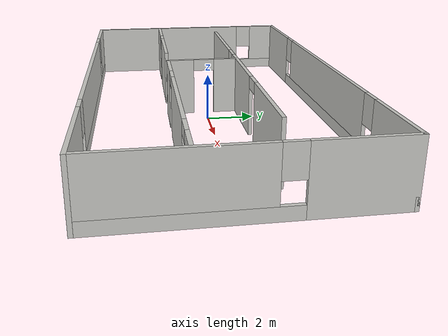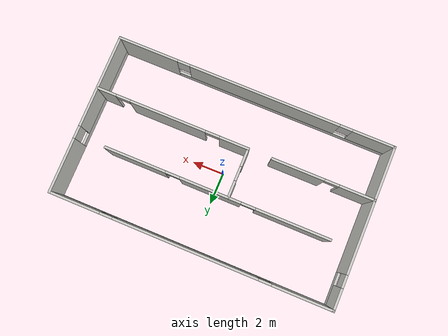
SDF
<?xml version='1.0'?>
<sdf version='1.7'>
  <model name='detectWall'>
    <pose>-0.025713 0.027615 0 0 -0 0</pose>
    <link name='Wall_0'>
      <pose>0 5.05 0 0 -0 0</pose>
      <visual name='Wall_0_Visual_0'>
        <pose>-6.96078 0 1.25 0 -0 0</pose>
        <geometry>
          <box>
            <size>3.82844 0.15 2.5</size>
          </box>
        </geometry>
        <material>
          <script>
            <uri>file://media/materials/scripts/gazebo.material</uri>
            <name>Gazebo/CeilingTiled</name>
          </script>
          <ambient>1 1 1 1</ambient>
        </material>
        <meta>
          <layer>0</layer>
        </meta>
      </visual>
      <collision name='Wall_0_Collision_0'>
        <geometry>
          <box>
            <size>3.82844 0.15 2.5</size>
          </box>
        </geometry>
        <pose>-6.96078 0 1.25 0 -0 0</pose>
      </collision>
      <visual name='Wall_0_Visual_1'>
        <pose>1.91422 0 0.25 0 -0 0</pose>
        <geometry>
          <box>
            <size>13.9216 0.15 0.5</size>
          </box>
        </geometry>
        <material>
          <script>
            <uri>file://media/materials/scripts/gazebo.material</uri>
            <name>Gazebo/CeilingTiled</name>
          </script>
          <ambient>1 1 1 1</ambient>
        </material>
        <meta>
          <layer>0</layer>
        </meta>
      </visual>
      <collision name='Wall_0_Collision_1'>
        <geometry>
          <box>
            <size>13.9216 0.15 0.5</size>
          </box>
        </geometry>
        <pose>1.91422 0 0.25 0 -0 0</pose>
      </collision>
      <visual name='Wall_0_Visual_2'>
        <pose>0.288681 0 1.5 0 -0 0</pose>
        <geometry>
          <box>
            <size>9.07048 0.15 2</size>
          </box>
        </geometry>
        <material>
          <script>
            <uri>file://media/materials/scripts/gazebo.material</uri>
            <name>Gazebo/CeilingTiled</name>
          </script>
          <ambient>1 1 1 1</ambient>
        </material>
        <meta>
          <layer>0</layer>
        </meta>
      </visual>
      <collision name='Wall_0_Collision_2'>
        <geometry>
          <box>
            <size>9.07048 0.15 2</size>
          </box>
        </geometry>
        <pose>0.288681 0 1.5 0 -0 0</pose>
      </collision>
      <visual name='Wall_0_Visual_3'>
        <pose>7.24946 0 1.5 0 -0 0</pose>
        <geometry>
          <box>
            <size>3.25108 0.15 2</size>
          </box>
        </geometry>
        <material>
          <script>
            <uri>file://media/materials/scripts/gazebo.material</uri>
            <name>Gazebo/CeilingTiled</name>
          </script>
          <ambient>1 1 1 1</ambient>
        </material>
        <meta>
          <layer>0</layer>
        </meta>
      </visual>
      <collision name='Wall_0_Collision_3'>
        <geometry>
          <box>
            <size>3.25108 0.15 2</size>
          </box>
        </geometry>
        <pose>7.24946 0 1.5 0 -0 0</pose>
      </collision>
      <visual name='Wall_0_Visual_4'>
        <pose>-4.64656 0 1.9 0 -0 0</pose>
        <geometry>
          <box>
            <size>0.8 0.15 1.2</size>
          </box>
        </geometry>
        <material>
          <script>
            <uri>file://media/materials/scripts/gazebo.material</uri>
            <name>Gazebo/CeilingTiled</name>
          </script>
          <ambient>1 1 1 1</ambient>
        </material>
        <meta>
          <layer>0</layer>
        </meta>
      </visual>
      <collision name='Wall_0_Collision_4'>
        <geometry>
          <box>
            <size>0.8 0.15 1.2</size>
          </box>
        </geometry>
        <pose>-4.64656 0 1.9 0 -0 0</pose>
      </collision>
      <visual name='Wall_0_Visual_5'>
        <pose>5.22392 0 1.9 0 -0 0</pose>
        <geometry>
          <box>
            <size>0.8 0.15 1.2</size>
          </box>
        </geometry>
        <material>
          <script>
            <uri>file://media/materials/scripts/gazebo.material</uri>
            <name>Gazebo/CeilingTiled</name>
          </script>
          <ambient>1 1 1 1</ambient>
        </material>
        <meta>
          <layer>0</layer>
        </meta>
      </visual>
      <collision name='Wall_0_Collision_5'>
        <geometry>
          <box>
            <size>0.8 0.15 1.2</size>
          </box>
        </geometry>
        <pose>5.22392 0 1.9 0 -0 0</pose>
      </collision>
    </link>
    <link name='Wall_1'>
      <pose>8.8 -0 0 0 -0 -1.5708</pose>
      <visual name='Wall_1_Visual_0'>
        <pose>-3.3782 0 1.25 0 -0 0</pose>
        <geometry>
          <box>
            <size>3.49359 0.15 2.5</size>
          </box>
        </geometry>
        <material>
          <script>
            <uri>file://media/materials/scripts/gazebo.material</uri>
            <name>Gazebo/CeilingTiled</name>
          </script>
          <ambient>1 1 1 1</ambient>
        </material>
        <meta>
          <layer>0</layer>
        </meta>
      </visual>
      <collision name='Wall_1_Collision_0'>
        <geometry>
          <box>
            <size>3.49359 0.15 2.5</size>
          </box>
        </geometry>
        <pose>-3.3782 0 1.25 0 -0 0</pose>
      </collision>
      <visual name='Wall_1_Visual_1'>
        <pose>1.7468 0 0.25 0 -0 0</pose>
        <geometry>
          <box>
            <size>6.75641 0.15 0.5</size>
          </box>
        </geometry>
        <material>
          <script>
            <uri>file://media/materials/scripts/gazebo.material</uri>
            <name>Gazebo/CeilingTiled</name>
          </script>
          <ambient>1 1 1 1</ambient>
        </material>
        <meta>
          <layer>0</layer>
        </meta>
      </visual>
      <collision name='Wall_1_Collision_1'>
        <geometry>
          <box>
            <size>6.75641 0.15 0.5</size>
          </box>
        </geometry>
        <pose>1.7468 0 0.25 0 -0 0</pose>
      </collision>
      <visual name='Wall_1_Visual_2'>
        <pose>2.1468 0 1.5 0 -0 0</pose>
        <geometry>
          <box>
            <size>5.95641 0.15 2</size>
          </box>
        </geometry>
        <material>
          <script>
            <uri>file://media/materials/scripts/gazebo.material</uri>
            <name>Gazebo/CeilingTiled</name>
          </script>
          <ambient>1 1 1 1</ambient>
        </material>
        <meta>
          <layer>0</layer>
        </meta>
      </visual>
      <collision name='Wall_1_Collision_2'>
        <geometry>
          <box>
            <size>5.95641 0.15 2</size>
          </box>
        </geometry>
        <pose>2.1468 0 1.5 0 -0 0</pose>
      </collision>
      <visual name='Wall_1_Visual_3'>
        <pose>-1.23141 0 1.9 0 -0 0</pose>
        <geometry>
          <box>
            <size>0.8 0.15 1.2</size>
          </box>
        </geometry>
        <material>
          <script>
            <uri>file://media/materials/scripts/gazebo.material</uri>
            <name>Gazebo/CeilingTiled</name>
          </script>
          <ambient>1 1 1 1</ambient>
        </material>
        <meta>
          <layer>0</layer>
        </meta>
      </visual>
      <collision name='Wall_1_Collision_3'>
        <geometry>
          <box>
            <size>0.8 0.15 1.2</size>
          </box>
        </geometry>
        <pose>-1.23141 0 1.9 0 -0 0</pose>
      </collision>
    </link>
    <link name='Wall_10'>
      <pose>-5.60751 -1.68367 0 0 -0 0</pose>
      <visual name='Wall_10_Visual_0'>
        <pose>-2.12298 0 1.25 0 -0 0</pose>
        <geometry>
          <box>
            <size>2.25404 0.15 2.5</size>
          </box>
        </geometry>
        <material>
          <script>
            <uri>file://media/materials/scripts/gazebo.material</uri>
            <name>Gazebo/CeilingTiled</name>
          </script>
          <ambient>1 1 1 1</ambient>
        </material>
        <meta>
          <layer>0</layer>
        </meta>
      </visual>
      <collision name='Wall_10_Collision_0'>
        <geometry>
          <box>
            <size>2.25404 0.15 2.5</size>
          </box>
        </geometry>
        <pose>-2.12298 0 1.25 0 -0 0</pose>
      </collision>
      <visual name='Wall_10_Visual_1'>
        <pose>1.57702 0 1.25 0 -0 0</pose>
        <geometry>
          <box>
            <size>3.34596 0.15 2.5</size>
          </box>
        </geometry>
        <material>
          <script>
            <uri>file://media/materials/scripts/gazebo.material</uri>
            <name>Gazebo/CeilingTiled</name>
          </script>
          <ambient>1 1 1 1</ambient>
        </material>
        <meta>
          <layer>0</layer>
        </meta>
      </visual>
      <collision name='Wall_10_Collision_1'>
        <geometry>
          <box>
            <size>3.34596 0.15 2.5</size>
          </box>
        </geometry>
        <pose>1.57702 0 1.25 0 -0 0</pose>
      </collision>
      <visual name='Wall_10_Visual_2'>
        <pose>-0.545956 0 2.25 0 -0 0</pose>
        <geometry>
          <box>
            <size>0.9 0.15 0.5</size>
          </box>
        </geometry>
        <material>
          <script>
            <uri>file://media/materials/scripts/gazebo.material</uri>
            <name>Gazebo/CeilingTiled</name>
          </script>
          <ambient>1 1 1 1</ambient>
        </material>
        <meta>
          <layer>0</layer>
        </meta>
      </visual>
      <collision name='Wall_10_Collision_2'>
        <geometry>
          <box>
            <size>0.9 0.15 0.5</size>
          </box>
        </geometry>
        <pose>-0.545956 0 2.25 0 -0 0</pose>
      </collision>
    </link>
    <link name='Wall_12'>
      <pose>-0.894491 -0.143127 0 0 -0 -1.5708</pose>
      <visual name='Wall_12_Visual_0'>
        <pose>-1.0568 0 1.25 0 -0 0</pose>
        <geometry>
          <box>
            <size>1.1364 0.15 2.5</size>
          </box>
        </geometry>
        <material>
          <script>
            <uri>file://media/materials/scripts/gazebo.material</uri>
            <name>Gazebo/CeilingTiled</name>
          </script>
          <ambient>1 1 1 1</ambient>
        </material>
        <meta>
          <layer>0</layer>
        </meta>
      </visual>
      <collision name='Wall_12_Collision_0'>
        <geometry>
          <box>
            <size>1.1364 0.15 2.5</size>
          </box>
        </geometry>
        <pose>-1.0568 0 1.25 0 -0 0</pose>
      </collision>
      <visual name='Wall_12_Visual_1'>
        <pose>1.0182 0 1.25 0 -0 0</pose>
        <geometry>
          <box>
            <size>1.21361 0.15 2.5</size>
          </box>
        </geometry>
        <material>
          <script>
            <uri>file://media/materials/scripts/gazebo.material</uri>
            <name>Gazebo/CeilingTiled</name>
          </script>
          <ambient>1 1 1 1</ambient>
        </material>
        <meta>
          <layer>0</layer>
        </meta>
      </visual>
      <collision name='Wall_12_Collision_1'>
        <geometry>
          <box>
            <size>1.21361 0.15 2.5</size>
          </box>
        </geometry>
        <pose>1.0182 0 1.25 0 -0 0</pose>
      </collision>
      <visual name='Wall_12_Visual_2'>
        <pose>-0.038605 0 2.25 0 -0 0</pose>
        <geometry>
          <box>
            <size>0.9 0.15 0.5</size>
          </box>
        </geometry>
        <material>
          <script>
            <uri>file://media/materials/scripts/gazebo.material</uri>
            <name>Gazebo/CeilingTiled</name>
          </script>
          <ambient>1 1 1 1</ambient>
        </material>
        <meta>
          <layer>0</layer>
        </meta>
      </visual>
      <collision name='Wall_12_Collision_2'>
        <geometry>
          <box>
            <size>0.9 0.15 0.5</size>
          </box>
        </geometry>
        <pose>-0.038605 0 2.25 0 -0 0</pose>
      </collision>
    </link>
    <link name='Wall_16'>
      <pose>3.90551 -1.69313 0 0 -0 0</pose>
      <visual name='Wall_16_Visual_0'>
        <pose>-3.92574 0 1.25 0 -0 0</pose>
        <geometry>
          <box>
            <size>1.89852 0.15 2.5</size>
          </box>
        </geometry>
        <material>
          <script>
            <uri>file://media/materials/scripts/gazebo.material</uri>
            <name>Gazebo/CeilingTiled</name>
          </script>
          <ambient>1 1 1 1</ambient>
        </material>
        <meta>
          <layer>0</layer>
        </meta>
      </visual>
      <collision name='Wall_16_Collision_0'>
        <geometry>
          <box>
            <size>1.89852 0.15 2.5</size>
          </box>
        </geometry>
        <pose>-3.92574 0 1.25 0 -0 0</pose>
      </collision>
      <visual name='Wall_16_Visual_1'>
        <pose>0.342771 0 1.25 0 -0 0</pose>
        <geometry>
          <box>
            <size>4.8385 0.15 2.5</size>
          </box>
        </geometry>
        <material>
          <script>
            <uri>file://media/materials/scripts/gazebo.material</uri>
            <name>Gazebo/CeilingTiled</name>
          </script>
          <ambient>1 1 1 1</ambient>
        </material>
        <meta>
          <layer>0</layer>
        </meta>
      </visual>
      <collision name='Wall_16_Collision_1'>
        <geometry>
          <box>
            <size>4.8385 0.15 2.5</size>
          </box>
        </geometry>
        <pose>0.342771 0 1.25 0 -0 0</pose>
      </collision>
      <visual name='Wall_16_Visual_2'>
        <pose>4.26851 0 1.25 0 -0 0</pose>
        <geometry>
          <box>
            <size>1.21298 0.15 2.5</size>
          </box>
        </geometry>
        <material>
          <script>
            <uri>file://media/materials/scripts/gazebo.material</uri>
            <name>Gazebo/CeilingTiled</name>
          </script>
          <ambient>1 1 1 1</ambient>
        </material>
        <meta>
          <layer>0</layer>
        </meta>
      </visual>
      <collision name='Wall_16_Collision_2'>
        <geometry>
          <box>
            <size>1.21298 0.15 2.5</size>
          </box>
        </geometry>
        <pose>4.26851 0 1.25 0 -0 0</pose>
      </collision>
      <visual name='Wall_16_Visual_3'>
        <pose>-2.52648 0 2.25 0 -0 0</pose>
        <geometry>
          <box>
            <size>0.9 0.15 0.5</size>
          </box>
        </geometry>
        <material>
          <script>
            <uri>file://media/materials/scripts/gazebo.material</uri>
            <name>Gazebo/CeilingTiled</name>
          </script>
          <ambient>1 1 1 1</ambient>
        </material>
        <meta>
          <layer>0</layer>
        </meta>
      </visual>
      <collision name='Wall_16_Collision_3'>
        <geometry>
          <box>
            <size>0.9 0.15 0.5</size>
          </box>
        </geometry>
        <pose>-2.52648 0 2.25 0 -0 0</pose>
      </collision>
      <visual name='Wall_16_Visual_4'>
        <pose>3.21202 0 2.25 0 -0 0</pose>
        <geometry>
          <box>
            <size>0.9 0.15 0.5</size>
          </box>
        </geometry>
        <material>
          <script>
            <uri>file://media/materials/scripts/gazebo.material</uri>
            <name>Gazebo/CeilingTiled</name>
          </script>
          <ambient>1 1 1 1</ambient>
        </material>
        <meta>
          <layer>0</layer>
        </meta>
      </visual>
      <collision name='Wall_16_Collision_4'>
        <geometry>
          <box>
            <size>0.9 0.15 0.5</size>
          </box>
        </geometry>
        <pose>3.21202 0 2.25 0 -0 0</pose>
      </collision>
    </link>
    <link name='Wall_2'>
      <pose>0 -5.05 0 0 -0 3.14159</pose>
      <visual name='Wall_2_Visual_0'>
        <pose>-6.95289 0 1.25 0 -0 0</pose>
        <geometry>
          <box>
            <size>3.84422 0.15 2.5</size>
          </box>
        </geometry>
        <material>
          <script>
            <uri>file://media/materials/scripts/gazebo.material</uri>
            <name>Gazebo/CeilingTiled</name>
          </script>
          <ambient>1 1 1 1</ambient>
        </material>
        <meta>
          <layer>0</layer>
        </meta>
      </visual>
      <collision name='Wall_2_Collision_0'>
        <geometry>
          <box>
            <size>3.84422 0.15 2.5</size>
          </box>
        </geometry>
        <pose>-6.95289 0 1.25 0 -0 0</pose>
      </collision>
      <visual name='Wall_2_Visual_1'>
        <pose>1.92211 0 0.25 0 -0 0</pose>
        <geometry>
          <box>
            <size>13.9058 0.15 0.5</size>
          </box>
        </geometry>
        <material>
          <script>
            <uri>file://media/materials/scripts/gazebo.material</uri>
            <name>Gazebo/CeilingTiled</name>
          </script>
          <ambient>1 1 1 1</ambient>
        </material>
        <meta>
          <layer>0</layer>
        </meta>
      </visual>
      <collision name='Wall_2_Collision_1'>
        <geometry>
          <box>
            <size>13.9058 0.15 0.5</size>
          </box>
        </geometry>
        <pose>1.92211 0 0.25 0 -0 0</pose>
      </collision>
      <visual name='Wall_2_Visual_2'>
        <pose>0.570613 0 1.5 0 -0 0</pose>
        <geometry>
          <box>
            <size>9.60279 0.15 2</size>
          </box>
        </geometry>
        <material>
          <script>
            <uri>file://media/materials/scripts/gazebo.material</uri>
            <name>Gazebo/CeilingTiled</name>
          </script>
          <ambient>1 1 1 1</ambient>
        </material>
        <meta>
          <layer>0</layer>
        </meta>
      </visual>
      <collision name='Wall_2_Collision_2'>
        <geometry>
          <box>
            <size>9.60279 0.15 2</size>
          </box>
        </geometry>
        <pose>0.570613 0 1.5 0 -0 0</pose>
      </collision>
      <visual name='Wall_2_Visual_3'>
        <pose>7.5235 0 1.5 0 -0 0</pose>
        <geometry>
          <box>
            <size>2.703 0.15 2</size>
          </box>
        </geometry>
        <material>
          <script>
            <uri>file://media/materials/scripts/gazebo.material</uri>
            <name>Gazebo/CeilingTiled</name>
          </script>
          <ambient>1 1 1 1</ambient>
        </material>
        <meta>
          <layer>0</layer>
        </meta>
      </visual>
      <collision name='Wall_2_Collision_3'>
        <geometry>
          <box>
            <size>2.703 0.15 2</size>
          </box>
        </geometry>
        <pose>7.5235 0 1.5 0 -0 0</pose>
      </collision>
      <visual name='Wall_2_Visual_4'>
        <pose>-4.63078 0 1.9 0 -0 0</pose>
        <geometry>
          <box>
            <size>0.8 0.15 1.2</size>
          </box>
        </geometry>
        <material>
          <script>
            <uri>file://media/materials/scripts/gazebo.material</uri>
            <name>Gazebo/CeilingTiled</name>
          </script>
          <ambient>1 1 1 1</ambient>
        </material>
        <meta>
          <layer>0</layer>
        </meta>
      </visual>
      <collision name='Wall_2_Collision_4'>
        <geometry>
          <box>
            <size>0.8 0.15 1.2</size>
          </box>
        </geometry>
        <pose>-4.63078 0 1.9 0 -0 0</pose>
      </collision>
      <visual name='Wall_2_Visual_5'>
        <pose>5.77201 0 1.9 0 -0 0</pose>
        <geometry>
          <box>
            <size>0.8 0.15 1.2</size>
          </box>
        </geometry>
        <material>
          <script>
            <uri>file://media/materials/scripts/gazebo.material</uri>
            <name>Gazebo/CeilingTiled</name>
          </script>
          <ambient>1 1 1 1</ambient>
        </material>
        <meta>
          <layer>0</layer>
        </meta>
      </visual>
      <collision name='Wall_2_Collision_5'>
        <geometry>
          <box>
            <size>0.8 0.15 1.2</size>
          </box>
        </geometry>
        <pose>5.77201 0 1.9 0 -0 0</pose>
      </collision>
    </link>
    <link name='Wall_3'>
      <pose>-8.8 -0 0 0 -0 1.5708</pose>
      <visual name='Wall_3_Visual_0'>
        <pose>-1.1126 0 1.25 0 -0 0</pose>
        <geometry>
          <box>
            <size>8.0248 0.15 2.5</size>
          </box>
        </geometry>
        <material>
          <script>
            <uri>file://media/materials/scripts/gazebo.material</uri>
            <name>Gazebo/CeilingTiled</name>
          </script>
          <ambient>1 1 1 1</ambient>
        </material>
        <meta>
          <layer>0</layer>
        </meta>
      </visual>
      <collision name='Wall_3_Collision_0'>
        <geometry>
          <box>
            <size>8.0248 0.15 2.5</size>
          </box>
        </geometry>
        <pose>-1.1126 0 1.25 0 -0 0</pose>
      </collision>
      <visual name='Wall_3_Visual_1'>
        <pose>4.0124 0 0.25 0 -0 0</pose>
        <geometry>
          <box>
            <size>2.2252 0.15 0.5</size>
          </box>
        </geometry>
        <material>
          <script>
            <uri>file://media/materials/scripts/gazebo.material</uri>
            <name>Gazebo/CeilingTiled</name>
          </script>
          <ambient>1 1 1 1</ambient>
        </material>
        <meta>
          <layer>0</layer>
        </meta>
      </visual>
      <collision name='Wall_3_Collision_1'>
        <geometry>
          <box>
            <size>2.2252 0.15 0.5</size>
          </box>
        </geometry>
        <pose>4.0124 0 0.25 0 -0 0</pose>
      </collision>
      <visual name='Wall_3_Visual_2'>
        <pose>4.4124 0 1.5 0 -0 0</pose>
        <geometry>
          <box>
            <size>1.4252 0.15 2</size>
          </box>
        </geometry>
        <material>
          <script>
            <uri>file://media/materials/scripts/gazebo.material</uri>
            <name>Gazebo/CeilingTiled</name>
          </script>
          <ambient>1 1 1 1</ambient>
        </material>
        <meta>
          <layer>0</layer>
        </meta>
      </visual>
      <collision name='Wall_3_Collision_2'>
        <geometry>
          <box>
            <size>1.4252 0.15 2</size>
          </box>
        </geometry>
        <pose>4.4124 0 1.5 0 -0 0</pose>
      </collision>
      <visual name='Wall_3_Visual_3'>
        <pose>3.2998 0 1.9 0 -0 0</pose>
        <geometry>
          <box>
            <size>0.8 0.15 1.2</size>
          </box>
        </geometry>
        <material>
          <script>
            <uri>file://media/materials/scripts/gazebo.material</uri>
            <name>Gazebo/CeilingTiled</name>
          </script>
          <ambient>1 1 1 1</ambient>
        </material>
        <meta>
          <layer>0</layer>
        </meta>
      </visual>
      <collision name='Wall_3_Collision_3'>
        <geometry>
          <box>
            <size>0.8 0.15 1.2</size>
          </box>
        </geometry>
        <pose>3.2998 0 1.9 0 -0 0</pose>
      </collision>
    </link>
    <link name='Wall_6'>
      <pose>-0.177279 1.41197 0 0 -0 0</pose>
      <visual name='Wall_6_Visual_0'>
        <pose>-4.77502 0 1.25 0 -0 0</pose>
        <geometry>
          <box>
            <size>4.69996 0.15 2.5</size>
          </box>
        </geometry>
        <material>
          <script>
            <uri>file://media/materials/scripts/gazebo.material</uri>
            <name>Gazebo/CeilingTiled</name>
          </script>
          <ambient>1 1 1 1</ambient>
        </material>
        <meta>
          <layer>0</layer>
        </meta>
      </visual>
      <collision name='Wall_6_Collision_0'>
        <geometry>
          <box>
            <size>4.69996 0.15 2.5</size>
          </box>
        </geometry>
        <pose>-4.77502 0 1.25 0 -0 0</pose>
      </collision>
      <visual name='Wall_6_Visual_1'>
        <pose>0.405126 0 1.25 0 -0 0</pose>
        <geometry>
          <box>
            <size>3.86034 0.15 2.5</size>
          </box>
        </geometry>
        <material>
          <script>
            <uri>file://media/materials/scripts/gazebo.material</uri>
            <name>Gazebo/CeilingTiled</name>
          </script>
          <ambient>1 1 1 1</ambient>
        </material>
        <meta>
          <layer>0</layer>
        </meta>
      </visual>
      <collision name='Wall_6_Collision_1'>
        <geometry>
          <box>
            <size>3.86034 0.15 2.5</size>
          </box>
        </geometry>
        <pose>0.405126 0 1.25 0 -0 0</pose>
      </collision>
      <visual name='Wall_6_Visual_2'>
        <pose>5.18015 0 1.25 0 -0 0</pose>
        <geometry>
          <box>
            <size>3.88971 0.15 2.5</size>
          </box>
        </geometry>
        <material>
          <script>
            <uri>file://media/materials/scripts/gazebo.material</uri>
            <name>Gazebo/CeilingTiled</name>
          </script>
          <ambient>1 1 1 1</ambient>
        </material>
        <meta>
          <layer>0</layer>
        </meta>
      </visual>
      <collision name='Wall_6_Collision_2'>
        <geometry>
          <box>
            <size>3.88971 0.15 2.5</size>
          </box>
        </geometry>
        <pose>5.18015 0 1.25 0 -0 0</pose>
      </collision>
      <visual name='Wall_6_Visual_3'>
        <pose>-1.97504 0 2.25 0 -0 0</pose>
        <geometry>
          <box>
            <size>0.9 0.15 0.5</size>
          </box>
        </geometry>
        <material>
          <script>
            <uri>file://media/materials/scripts/gazebo.material</uri>
            <name>Gazebo/CeilingTiled</name>
          </script>
          <ambient>1 1 1 1</ambient>
        </material>
        <meta>
          <layer>0</layer>
        </meta>
      </visual>
      <collision name='Wall_6_Collision_3'>
        <geometry>
          <box>
            <size>0.9 0.15 0.5</size>
          </box>
        </geometry>
        <pose>-1.97504 0 2.25 0 -0 0</pose>
      </collision>
      <visual name='Wall_6_Visual_4'>
        <pose>2.7853 0 2.25 0 -0 0</pose>
        <geometry>
          <box>
            <size>0.9 0.15 0.5</size>
          </box>
        </geometry>
        <material>
          <script>
            <uri>file://media/materials/scripts/gazebo.material</uri>
            <name>Gazebo/CeilingTiled</name>
          </script>
          <ambient>1 1 1 1</ambient>
        </material>
        <meta>
          <layer>0</layer>
        </meta>
      </visual>
      <collision name='Wall_6_Collision_4'>
        <geometry>
          <box>
            <size>0.9 0.15 0.5</size>
          </box>
        </geometry>
        <pose>2.7853 0 2.25 0 -0 0</pose>
      </collision>
    </link>
    <static>1</static>
  </model>
</sdf>
